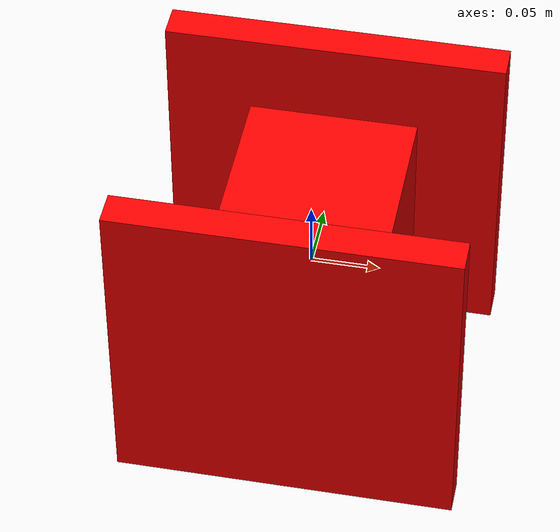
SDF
<?xml version="1.0" ?>
<sdf version="1.6">
  <model name="winch">
    <static>false</static>

    <!-- Box alargado en horizontal -->
    <link name="box_central">
      <pose>0 0 0 0 0 1.5708</pose>
      <collision name="collision">
        <geometry>
          <box>
            <size>0.2 0.125 0.125</size>
          </box>
        </geometry>
      </collision>
      <visual name="visual">
        <geometry>
          <box>
            <size>0.2 0.125 0.125</size>
          </box>
        </geometry>
        <material>
          <ambient>0.8 0 0 1</ambient>
          <diffuse>1 0 0 1</diffuse>
          <specular>1 0.2 0.2 1</specular>
          <emissive>0 0 0 0</emissive>
        </material>
      </visual>
    </link>

    <!-- Box plano vertical izquierdo -->
    <link name="box_plano_izquierdo">
      <pose>0 -0.1 0 0 0 1.5708</pose>
      <collision name="collision">
        <geometry>
          <box>
            <size>0.025 0.25 0.25</size>
          </box>
        </geometry>
      </collision>
      <visual name="visual">
        <geometry>
          <box>
            <size>0.025 0.25 0.25</size>
          </box>
        </geometry>
        <material>
          <ambient>0.8 0 0 1</ambient>
          <diffuse>1 0 0 1</diffuse>
          <specular>1 0.2 0.2 1</specular>
          <emissive>0 0 0 0</emissive>
        </material>
      </visual>
    </link>

    <!-- Box plano vertical derecho -->
    <link name="box_plano_derecho">
      <pose>0 0.1 0 0 0 1.5708</pose>
      <collision name="collision">
        <geometry>
          <box>
            <size>0.025 0.25 0.25</size>
          </box>
        </geometry>
      </collision>
      <visual name="visual">
        <geometry>
          <box>
            <size>0.025 0.25 0.25</size>
          </box>
        </geometry>
        <material>
          <ambient>0.8 0 0 1</ambient>
          <diffuse>1 0 0 1</diffuse>
          <specular>1 0.2 0.2 1</specular>
          <emissive>0 0 0 0</emissive>
        </material>
      </visual>
    </link>

    <!-- Unión revoluta izquierda -->
    <joint name="joint_izquierdo" type="revolute">
      <parent>box_plano_izquierdo</parent>
      <child>box_central</child>
      <pose>0 0 0 0 0 1.5708</pose>
      <axis>
        <xyz>0 1 0</xyz>
        <limit>
          <lower>-1e16</lower>
          <upper>1e16</upper>
        </limit>
        <dynamics>
          <damping>0.1</damping>
          <friction>0.0</friction>
          <spring_stiffness>0.05</spring_stiffness>
          <spring_reference>0.0</spring_reference>
        </dynamics>
      </axis>
    </joint>

    <!-- Unión revoluta derecha -->
    <joint name="joint_derecho" type="revolute">
      <parent>box_plano_derecho</parent>
      <child>box_central</child>
      <pose>0 0 0 0 0 1.5708</pose>
      <axis>
        <xyz>0 1 0</xyz>
        <limit>
          <lower>-1e16</lower>
          <upper>1e16</upper>
        </limit>
        <dynamics>
          <damping>0.1</damping>
          <friction>0.0</friction>
          <spring_stiffness>0.05</spring_stiffness>
          <spring_reference>0.0</spring_reference>
        </dynamics>
      </axis>
    </joint>

  </model>
</sdf>
